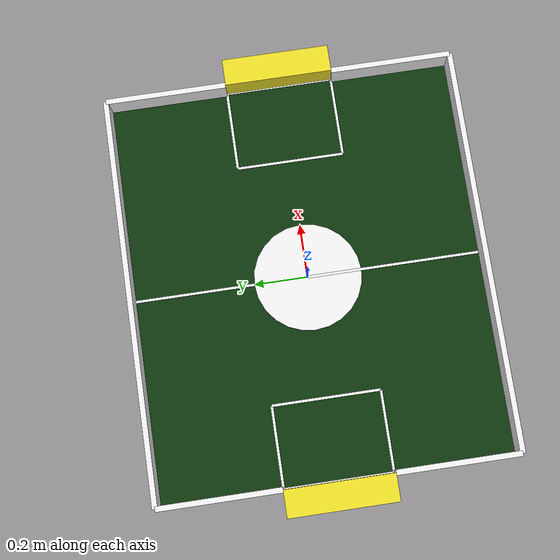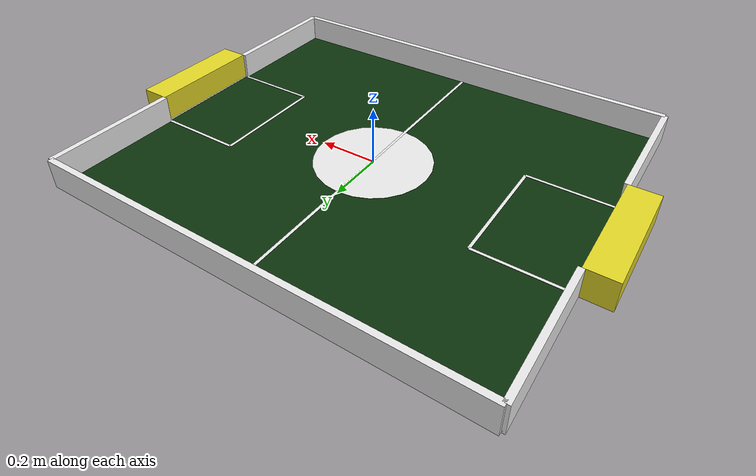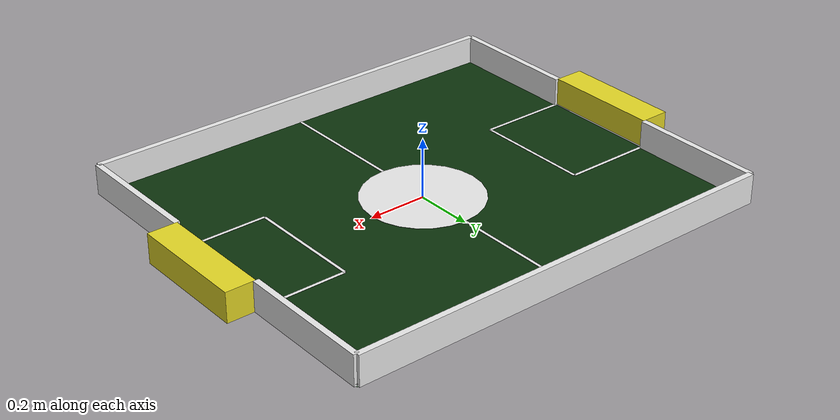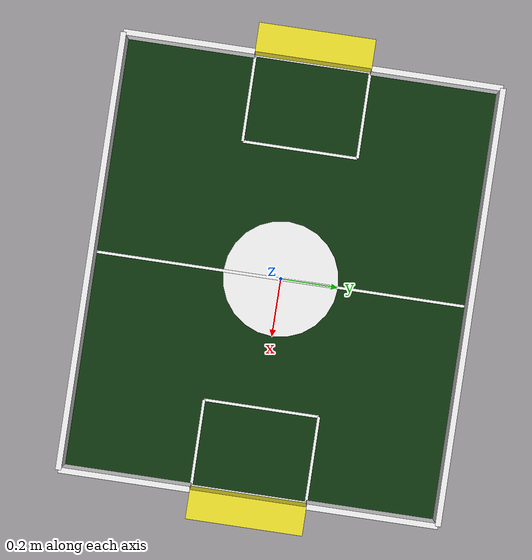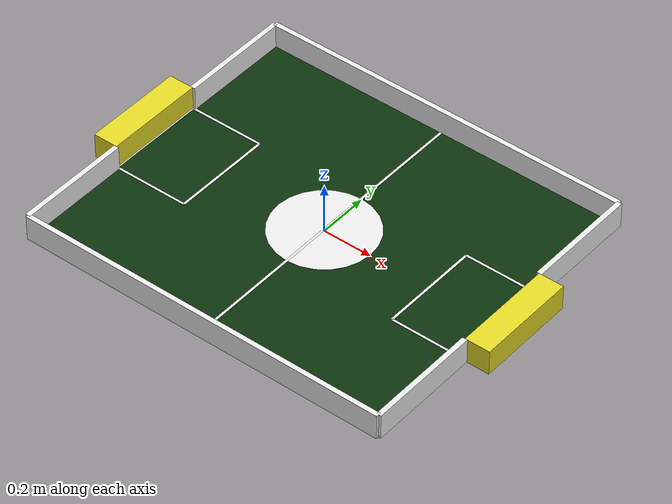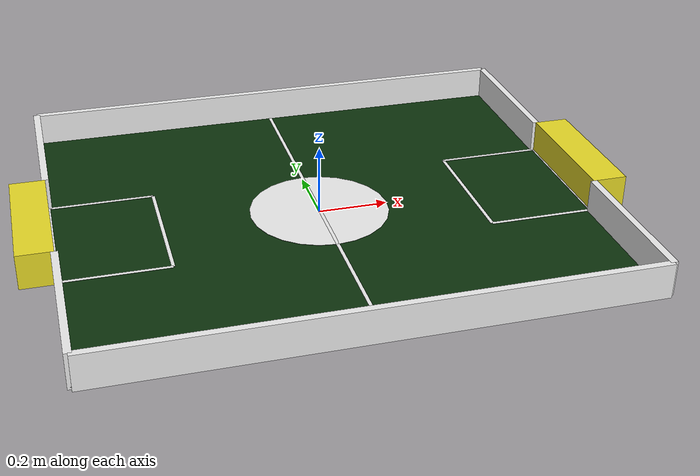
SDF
<?xml version="1.0" ?>
<sdf version="1.6">
  <world name="default">

    <include>
      <uri>model://sun</uri>
    </include>

    <include>
      <uri>model://campo_vss</uri>
    </include>

  </world>
</sdf>

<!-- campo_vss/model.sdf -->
<sdf version="1.6">
  <model name="campo_vss">
    <static>true</static>
    <link name="link">
      <visual name="base_visual">
        <geometry>
          <box>
            <size>1.5 1.3 0.01</size>
          </box>
        </geometry>
        <material>
          <ambient>0.05 0.2 0.05 1</ambient>
          <diffuse>0.05 0.2 0.05 1</diffuse>
        </material>
      </visual>
      <collision name="base_collision">
        <geometry>
          <box>
            <size>1.5 1.3 0.01</size>
          </box>
        </geometry>
      </collision>

      <visual name="wall_north_visual">
        <pose>0 0.65 0.05 0 0 0</pose>
        <geometry><box><size>1.5 0.02 0.1</size></box></geometry>
        <material><script><name>Gazebo/White</name></script></material>
      </visual>
      <collision name="wall_north_collision">
        <pose>0 0.65 0.05 0 0 0</pose>
        <geometry><box><size>1.5 0.02 0.1</size></box></geometry>
      </collision>

      <visual name="wall_south_visual">
        <pose>0 -0.65 0.05 0 0 0</pose>
        <geometry><box><size>1.5 0.02 0.1</size></box></geometry>
        <material><script><name>Gazebo/White</name></script></material>
      </visual>
      <collision name="wall_south_collision">
        <pose>0 -0.65 0.05 0 0 0</pose>
        <geometry><box><size>1.5 0.02 0.1</size></box></geometry>
      </collision>

      <visual name="wall_west_north_visual">
        <pose>-0.75 0.425 0.05 0 0 0</pose>
        <geometry><box><size>0.02 0.45 0.1</size></box></geometry>
        <material><script><name>Gazebo/White</name></script></material>
      </visual>
      <collision name="wall_west_north_collision">
        <pose>-0.75 0.425 0.05 0 0 0</pose>
        <geometry><box><size>0.02 0.45 0.1</size></box></geometry>
      </collision>

      <visual name="wall_west_south_visual">
        <pose>-0.75 -0.425 0.05 0 0 0</pose>
        <geometry><box><size>0.02 0.45 0.1</size></box></geometry>
        <material><script><name>Gazebo/White</name></script></material>
      </visual>
      <collision name="wall_west_south_collision">
        <pose>-0.75 -0.425 0.05 0 0 0</pose>
        <geometry><box><size>0.02 0.45 0.1</size></box></geometry>
      </collision>

      <visual name="wall_east_north_visual">
        <pose>0.75 0.425 0.05 0 0 0</pose>
        <geometry><box><size>0.02 0.45 0.1</size></box></geometry>
        <material><script><name>Gazebo/White</name></script></material>
      </visual>
      <collision name="wall_east_north_collision">
        <pose>0.75 0.425 0.05 0 0 0</pose>
        <geometry><box><size>0.02 0.45 0.1</size></box></geometry>
      </collision>

      <visual name="wall_east_south_visual">
        <pose>0.75 -0.425 0.05 0 0 0</pose>
        <geometry><box><size>0.02 0.45 0.1</size></box></geometry>
        <material><script><name>Gazebo/White</name></script></material>
      </visual>
      <collision name="wall_east_south_collision">
        <pose>0.75 -0.425 0.05 0 0 0</pose>
        <geometry><box><size>0.02 0.45 0.1</size></box></geometry>
      </collision>

      <visual name="goal_west_visual">
        <pose>-0.8 0 0.05 0 0 0</pose>
        <geometry><box><size>0.1 0.4 0.1</size></box></geometry>
        <material><script><name>Gazebo/Yellow</name></script></material>
      </visual>
      <collision name="goal_west_collision">
        <pose>-0.8 0 0.05 0 0 0</pose>
        <geometry><box><size>0.1 0.4 0.1</size></box></geometry>
      </collision>

      <visual name="goal_east_visual">
        <pose>0.8 0 0.05 0 0 0</pose>
        <geometry><box><size>0.1 0.4 0.1</size></box></geometry>
        <material><script><name>Gazebo/Yellow</name></script></material>
      </visual>
      <collision name="goal_east_collision">
        <pose>0.8 0 0.05 0 0 0</pose>
        <geometry><box><size>0.1 0.4 0.1</size></box></geometry>
      </collision>

      <visual name="line_center_visual">
        <pose>0 0 0.006 0 0 0</pose>
        <geometry><box><size>0.01 1.3 0.001</size></box></geometry>
        <material><script><name>Gazebo/White</name></script></material>
      </visual>

      <visual name="circle_center_visual">
          <pose>0 0 0.006 0 0 0</pose>
          <geometry>
            <cylinder>
              <radius>0.2</radius>
              <length>0.001</length>
            </cylinder>
          </geometry>
          <material><script><name>Gazebo/White</name></script></material>
      </visual>
      <visual name="circle_center_fill_visual">
          <pose>0 0 0.0055 0 0 0</pose>
          <geometry>
            <cylinder>
              <radius>0.19</radius>
              <length>0.001</length>
            </cylinder>
          </geometry>
          <material>
              <ambient>0.05 0.2 0.05 1</ambient>
              <diffuse>0.05 0.2 0.05 1</diffuse>
          </material>
      </visual>

      <visual name="line_north_visual">
        <pose>0 0.65 0.006 0 0 0</pose>
        <geometry><box><size>1.5 0.01 0.001</size></box></geometry>
        <material><script><name>Gazebo/White</name></script></material>
      </visual>
      <visual name="line_south_visual">
        <pose>0 -0.65 0.006 0 0 0</pose>
        <geometry><box><size>1.5 0.01 0.001</size></box></geometry>
        <material><script><name>Gazebo/White</name></script></material>
      </visual>

      <visual name="line_west_visual">
        <pose>-0.75 0 0.006 0 0 0</pose>
        <geometry><box><size>0.01 1.3 0.001</size></box></geometry>
        <material><script><name>Gazebo/White</name></script></material>
      </visual>
      <visual name="line_east_visual">
        <pose>0.75 0 0.006 0 0 0</pose>
        <geometry><box><size>0.01 1.3 0.001</size></box></geometry>
        <material><script><name>Gazebo/White</name></script></material>
      </visual>

      <visual name="area_west_1_visual">
        <pose>-0.6 0.2 0.006 0 0 0</pose>
        <geometry><box><size>0.3 0.01 0.001</size></box></geometry>
        <material><script><name>Gazebo/White</name></script></material>
      </visual>
       <visual name="area_west_2_visual">
        <pose>-0.6 -0.2 0.006 0 0 0</pose>
        <geometry><box><size>0.3 0.01 0.001</size></box></geometry>
        <material><script><name>Gazebo/White</name></script></material>
      </visual>
       <visual name="area_west_3_visual">
        <pose>-0.45 0 0.006 0 0 1.57</pose>
        <geometry><box><size>0.4 0.01 0.001</size></box></geometry>
        <material><script><name>Gazebo/White</name></script></material>
      </visual>

      <visual name="area_east_1_visual">
        <pose>0.6 0.2 0.006 0 0 0</pose>
        <geometry><box><size>0.3 0.01 0.001</size></box></geometry>
        <material><script><name>Gazebo/White</name></script></material>
      </visual>
       <visual name="area_east_2_visual">
        <pose>0.6 -0.2 0.006 0 0 0</pose>
        <geometry><box><size>0.3 0.01 0.001</size></box></geometry>
        <material><script><name>Gazebo/White</name></script></material>
      </visual>
       <visual name="area_east_3_visual">
        <pose>0.45 0 0.006 0 0 1.57</pose>
        <geometry><box><size>0.4 0.01 0.001</size></box></geometry>
        <material><script><name>Gazebo/White</name></script></material>
      </visual>

    </link>
  </model>
</sdf>
